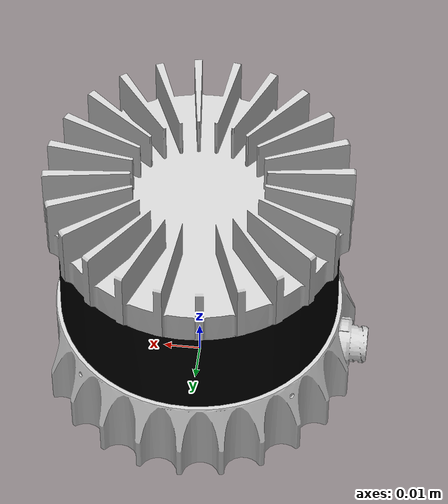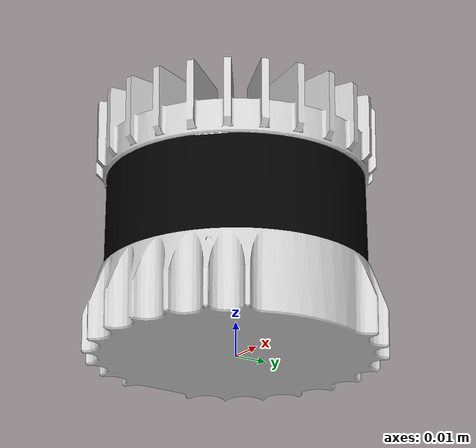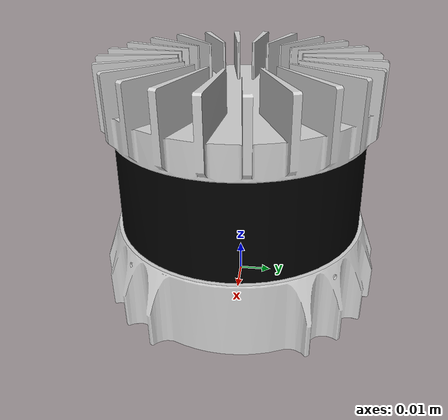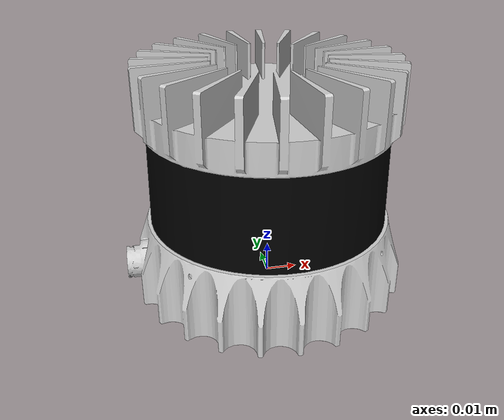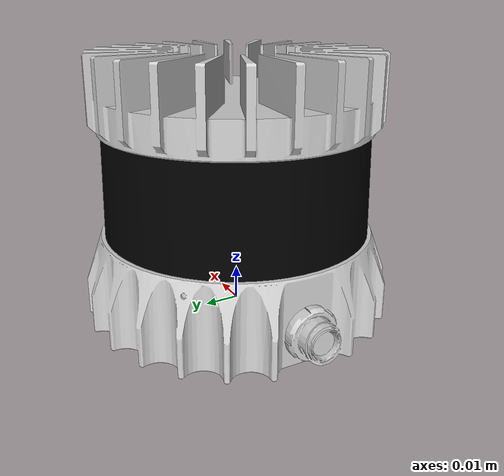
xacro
<?xml version='1.0' encoding='utf-8'?>
<!--
SPDX-FileCopyrightText: Alliander N. V.

SPDX-License-Identifier: Apache-2.0
-->

<!--
Based on:
1. https://data.ouster.io/downloads/datasheets/datasheet-rev7p1-os1.pdf
-->

<robot xmlns:xacro="http://www.ros.org/wiki/xacro" name="OS1-128">
  <xacro:property name="mesh_file" value="package://alliander_ouster_description/meshes/os1_128.dae"/>
  <xacro:property name="mass" value="0.502"/>
  <xacro:property name="radius" value="0.04325"/>
  <xacro:property name="height" value="0.0742"/>
  <xacro:property name="M_PI" value="3.1415926535897931" />
  <xacro:macro name="OS1-128"
    params="
    *origin
    namespace
    parent
    name:=ouster
    update_rate:=10
    lasers:=12
    samples:=1024
    min_range:=0.5
    max_range:=90.0
    min_angle:=-${M_PI}
    max_angle:=${M_PI}
    ">

  <!-- Base link -->
  <link name="base_link">
    <inertial>
      <mass value="${mass}" />
      <origin xyz="0 0 0.0371" />
      <inertia ixx="${(mass * (3.0*radius*radius + height*height)) / 12.0}" ixy="0" ixz="0"
        iyy="${(mass * (3.0*radius*radius + height*height)) / 12.0}" iyz="0"
        izz="${0.5 * mass * (radius*radius)}" />
    </inertial>
    <visual>
      <geometry>
        <mesh filename="${mesh_file}" />
      </geometry>
    </visual>
    <collision>
      <origin rpy="0 0 0" xyz="0 0 0.0371" />
      <geometry>
        <cylinder radius="${radius}" length="${height}" />
      </geometry>
    </collision>
  </link>

  <!-- Laser sensor link -->
  <joint name="base_scan_joint" type="fixed">
    <origin xyz="0 0 0.038195" rpy="0 0 0"/>
    <parent link="base_link"/>
    <child link="${name}"/>
  </joint>

  <link name="${name}">
    <inertial>
      <mass value="0.00" />
      <origin xyz="0 0 0" />
      <inertia ixx="1e-7" ixy="0" ixz="0" iyy="1e-7" iyz="0" izz="1e-7" />
    </inertial>
  </link>

    <!-- Gazebo requires a joint to a link called "world" for statically mounted robots -->
    <xacro:if value="${parent == 'world'}">
      <link name="${parent}" />
      <joint name="${parent}_joint" type="fixed">
        <parent link="${parent}" />
        <child link="base_link" />
      </joint>
    </xacro:if>

    <gazebo reference="${name}">
      <sensor type="gpu_lidar" name="${namespace}">
        <always_on>true</always_on>
        <update_rate>${update_rate}</update_rate>

        <topic>${namespace}/scan</topic>
        <visualize>false</visualize>

        <gz_frame_id>${namespace}/${name}</gz_frame_id>
        <frame_id>${namespace}/${name}</frame_id>

        <ray>
          <scan>
            <horizontal>
              <samples>${samples}</samples>
              <resolution>1</resolution>
              <min_angle>${min_angle}</min_angle>
              <max_angle>${max_angle}</max_angle>
            </horizontal>
            <vertical>
              <samples>${lasers}</samples>
              <resolution>1</resolution>
              <min_angle>-${21.2*M_PI/180.0}</min_angle>
              <max_angle> ${21.2*M_PI/180.0}</max_angle>
            </vertical>
          </scan>
          <range>
            <min>${min_range}</min>
            <max>${max_range}</max>
            <resolution>0.001</resolution>
          </range>
          <noise>
            <type>gaussian</type>
            <mean>0.0</mean>
            <stddev>0.0</stddev>
          </noise>
        </ray>
      </sensor>
    </gazebo>

  </xacro:macro>

  <xacro:arg name="namespace" default="ouster" />
  <xacro:arg name="parent" default="" />
  <xacro:OS1-128 namespace="$(arg namespace)" parent="$(arg parent)">
    <origin xyz="0 0 0" rpy="0 0 0" />
  </xacro:OS1-128>
</robot>
